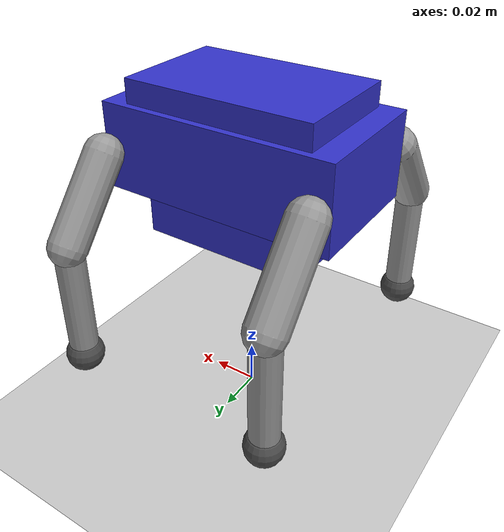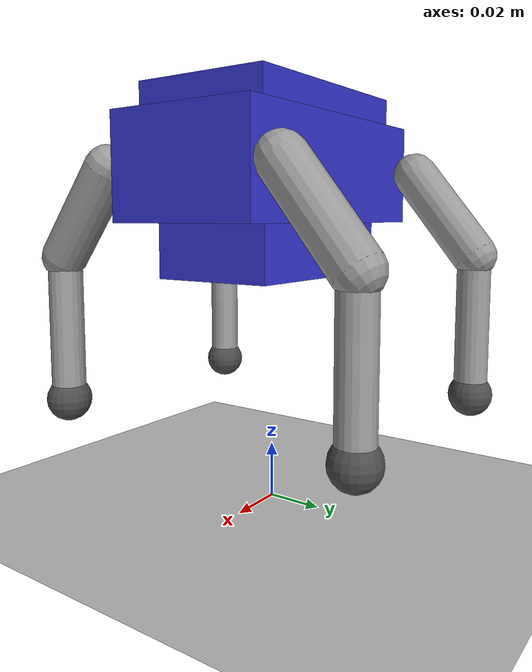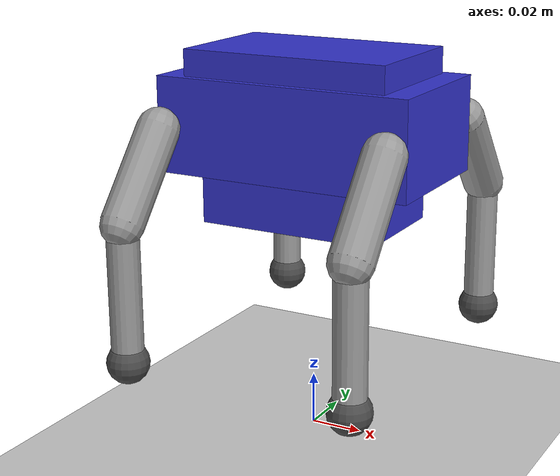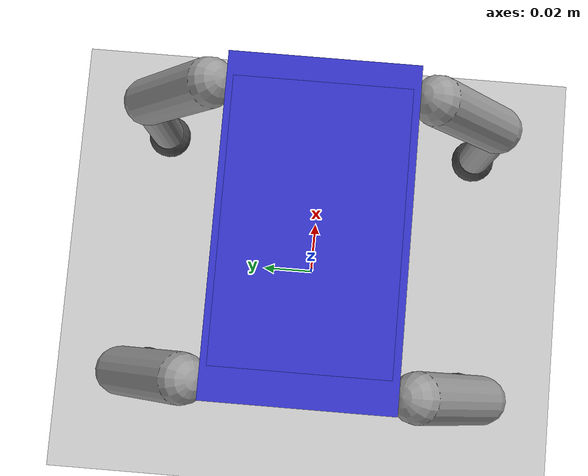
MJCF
<mujoco model="bittle">

  <compiler angle="radian" eulerseq="xyz"/>

  <option gravity="0 0 -9.81" timestep="0.002">
    <flag warmstart="enable"/>
  </option>

  <visual>
    <global offwidth="1920" offheight="1080"/>
  </visual>

  <default>
    <joint damping="0.05" armature="0.01"/>
    <geom friction="0.8 0.02 0.01" condim="3" conaffinity="1" contype="1"/>
    <motor ctrlrange="-1.5 1.5" ctrllimited="true"/>
    <position kp="5.0" kv="0.5" ctrlrange="-1.57 1.57"/>
    <!-- Servo default: position actuator with first-order filter for servo delay -->
    <default class="servo">
      <general dyntype="filter" dynprm="0.04" gaintype="fixed" biastype="affine"
               gainprm="5.0" biasprm="0 -5.0 -0.5"/>
    </default>
  </default>

  <asset>
    <texture type="skybox" builtin="gradient" rgb1="0.6 0.8 1.0" rgb2="0.2 0.4 0.8"
             width="512" height="512"/>
    <texture name="grid" type="2d" builtin="checker" rgb1="0.9 0.9 0.9"
             rgb2="0.7 0.7 0.7" width="512" height="512"/>
    <material name="grid" texture="grid" texrepeat="8 8" reflectance="0.1"/>
    <material name="body" rgba="0.2 0.2 0.8 1"/>
    <material name="leg" rgba="0.6 0.6 0.6 1"/>
    <material name="foot" rgba="0.3 0.3 0.3 1"/>
  </asset>

  <worldbody>
    <light pos="0 0 2" dir="0 0 -1" diffuse="0.8 0.8 0.8"/>
    <geom type="plane" size="2 2 0.1" material="grid"/>

    <!-- Bittle body -->
    <body name="torso" pos="0 0 0.12">
      <freejoint name="root"/>
      <inertial pos="0 0 0" mass="0.177" diaginertia="0.00062 0.0016 0.0021"/>

      <!-- Main body box (simplified from mesh) -->
      <!-- Bittle is ~200mm long, ~110mm wide, ~35mm tall -->
      <geom type="box" size="0.05 0.028 0.018" pos="0 0 0"
            material="body" mass="0.108"/>
      <!-- Battery underneath -->
      <geom type="box" size="0.035 0.022 0.012" pos="0 0 -0.025"
            material="body" mass="0.056"/>
      <!-- Cover on top -->
      <geom type="box" size="0.04 0.025 0.005" pos="0 0 0.023"
            material="body" mass="0.013"/>

      <!-- IMU sensor site (MPU6050 on mainboard) -->
      <site name="imu" pos="0 0 0.01" size="0.005"/>

      <!-- ============ FRONT LEFT LEG ============ -->
      <body name="shoulder_fl" pos="0.045 0.035 0">
        <joint name="shoulder_fl" type="hinge" axis="0 1 0"
               range="-1.57 1.22" ref="0"/>
        <inertial pos="0 0.012 -0.015" mass="0.006"
                  diaginertia="0.00002 0.00044 0.00044"/>
        <geom type="capsule" fromto="0 0 0 0 0.024 -0.030"
              size="0.008" material="leg"/>

        <body name="knee_fl" pos="0 0.024 -0.030">
          <joint name="knee_fl" type="hinge" axis="0 1 0"
                 range="-1.22 1.48" ref="0"/>
          <inertial pos="0 0 -0.025" mass="0.017"
                    diaginertia="0.00006 0.00065 0.00063"/>
          <geom type="capsule" fromto="0 0 0 0 0 -0.050"
                size="0.006" material="leg"/>
          <!-- Foot contact point -->
          <geom name="foot_fl" type="sphere" pos="0 0 -0.052"
                size="0.008" material="foot"/>
          <site name="foot_fl" pos="0 0 -0.052" size="0.008"/>
        </body>
      </body>

      <!-- ============ FRONT RIGHT LEG ============ -->
      <body name="shoulder_fr" pos="0.045 -0.035 0">
        <joint name="shoulder_fr" type="hinge" axis="0 1 0"
               range="-1.57 1.22" ref="0"/>
        <inertial pos="0 -0.012 -0.015" mass="0.006"
                  diaginertia="0.00002 0.00044 0.00044"/>
        <geom type="capsule" fromto="0 0 0 0 -0.024 -0.030"
              size="0.008" material="leg"/>

        <body name="knee_fr" pos="0 -0.024 -0.030">
          <joint name="knee_fr" type="hinge" axis="0 1 0"
                 range="-1.22 1.48" ref="0"/>
          <inertial pos="0 0 -0.025" mass="0.017"
                    diaginertia="0.00006 0.00065 0.00063"/>
          <geom type="capsule" fromto="0 0 0 0 0 -0.050"
                size="0.006" material="leg"/>
          <geom name="foot_fr" type="sphere" pos="0 0 -0.052"
                size="0.008" material="foot"/>
          <site name="foot_fr" pos="0 0 -0.052" size="0.008"/>
        </body>
      </body>

      <!-- ============ BACK LEFT LEG ============ -->
      <body name="shoulder_bl" pos="-0.045 0.035 0">
        <joint name="shoulder_bl" type="hinge" axis="0 1 0"
               range="-1.57 1.22" ref="0"/>
        <inertial pos="0 0.012 -0.015" mass="0.006"
                  diaginertia="0.00002 0.00044 0.00044"/>
        <geom type="capsule" fromto="0 0 0 0 0.024 -0.030"
              size="0.008" material="leg"/>

        <body name="knee_bl" pos="0 0.024 -0.030">
          <joint name="knee_bl" type="hinge" axis="0 1 0"
                 range="-1.22 1.48" ref="0"/>
          <inertial pos="0 0 -0.025" mass="0.017"
                    diaginertia="0.00006 0.00065 0.00063"/>
          <geom type="capsule" fromto="0 0 0 0 0 -0.050"
                size="0.006" material="leg"/>
          <geom name="foot_bl" type="sphere" pos="0 0 -0.052"
                size="0.008" material="foot"/>
          <site name="foot_bl" pos="0 0 -0.052" size="0.008"/>
        </body>
      </body>

      <!-- ============ BACK RIGHT LEG ============ -->
      <body name="shoulder_br" pos="-0.045 -0.035 0">
        <joint name="shoulder_br" type="hinge" axis="0 1 0"
               range="-1.57 1.22" ref="0"/>
        <inertial pos="0 -0.012 -0.015" mass="0.006"
                  diaginertia="0.00002 0.00044 0.00044"/>
        <geom type="capsule" fromto="0 0 0 0 -0.024 -0.030"
              size="0.008" material="leg"/>

        <body name="knee_br" pos="0 -0.024 -0.030">
          <joint name="knee_br" type="hinge" axis="0 1 0"
                 range="-1.22 1.48" ref="0"/>
          <inertial pos="0 0 -0.025" mass="0.017"
                    diaginertia="0.00006 0.00065 0.00063"/>
          <geom type="capsule" fromto="0 0 0 0 0 -0.050"
                size="0.006" material="leg"/>
          <geom name="foot_br" type="sphere" pos="0 0 -0.052"
                size="0.008" material="foot"/>
          <site name="foot_br" pos="0 0 -0.052" size="0.008"/>
        </body>
      </body>

    </body>
  </worldbody>

  <!-- Position-controlled actuators (matching hobby servo behavior) -->
  <actuator>
    <position name="servo_shoulder_fl" joint="shoulder_fl" kp="5.0" kv="0.5"
              ctrlrange="-1.57 1.22"/>
    <position name="servo_knee_fl" joint="knee_fl" kp="5.0" kv="0.5"
              ctrlrange="-1.22 1.48"/>
    <position name="servo_shoulder_fr" joint="shoulder_fr" kp="5.0" kv="0.5"
              ctrlrange="-1.57 1.22"/>
    <position name="servo_knee_fr" joint="knee_fr" kp="5.0" kv="0.5"
              ctrlrange="-1.22 1.48"/>
    <position name="servo_shoulder_bl" joint="shoulder_bl" kp="5.0" kv="0.5"
              ctrlrange="-1.57 1.22"/>
    <position name="servo_knee_bl" joint="knee_bl" kp="5.0" kv="0.5"
              ctrlrange="-1.22 1.48"/>
    <position name="servo_shoulder_br" joint="shoulder_br" kp="5.0" kv="0.5"
              ctrlrange="-1.57 1.22"/>
    <position name="servo_knee_br" joint="knee_br" kp="5.0" kv="0.5"
              ctrlrange="-1.22 1.48"/>
  </actuator>

  <!-- Sensors matching real Bittle hardware -->
  <sensor>
    <!-- IMU (MPU6050) -->
    <accelerometer name="imu_accel" site="imu"/>
    <gyro name="imu_gyro" site="imu"/>
    <framequat name="imu_quat" objtype="site" objname="imu"/>

    <!-- Joint positions (feedback servos on Bittle X V2) -->
    <jointpos joint="shoulder_fl"/>
    <jointpos joint="knee_fl"/>
    <jointpos joint="shoulder_fr"/>
    <jointpos joint="knee_fr"/>
    <jointpos joint="shoulder_bl"/>
    <jointpos joint="knee_bl"/>
    <jointpos joint="shoulder_br"/>
    <jointpos joint="knee_br"/>

    <!-- Foot contact (touch sensors — virtual, for reward shaping) -->
    <touch name="touch_fl" site="foot_fl"/>
    <touch name="touch_fr" site="foot_fr"/>
    <touch name="touch_bl" site="foot_bl"/>
    <touch name="touch_br" site="foot_br"/>

    <!-- Torso position/velocity (for fitness, not available on real robot) -->
    <framepos name="torso_pos" objtype="body" objname="torso"/>
    <framexaxis name="torso_xaxis" objtype="body" objname="torso"/>
  </sensor>
</mujoco>
